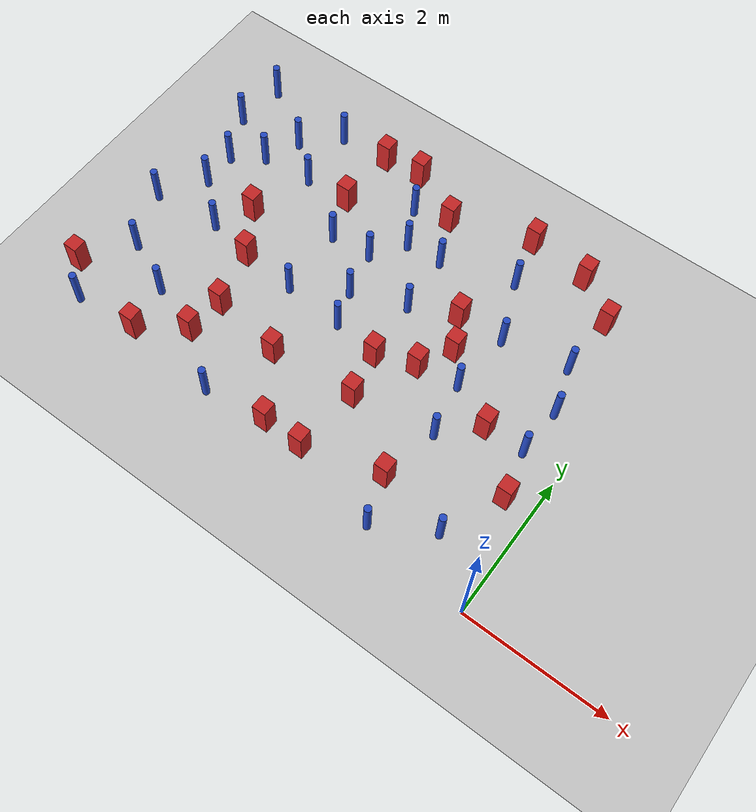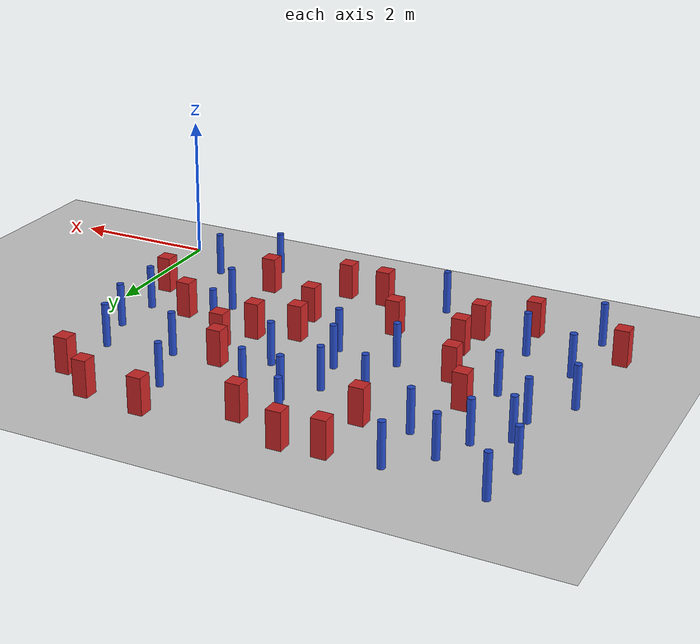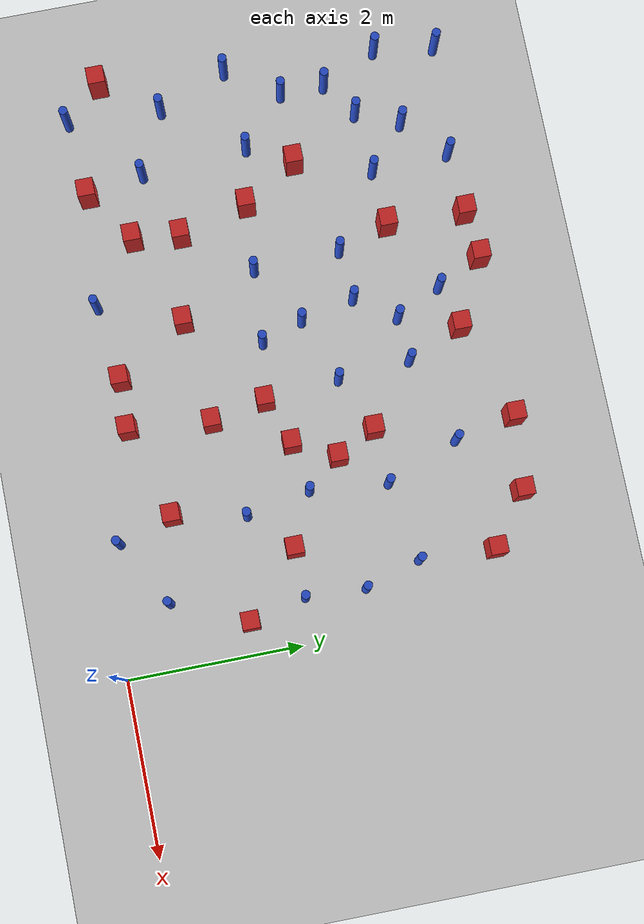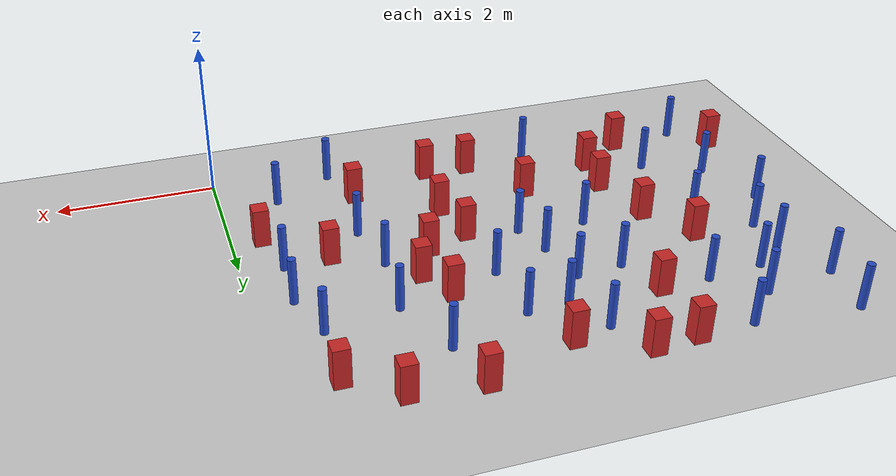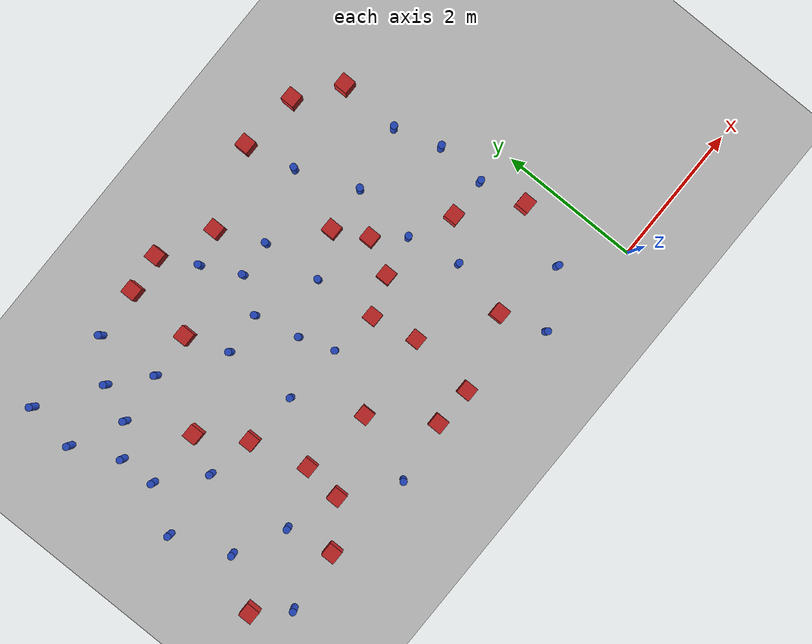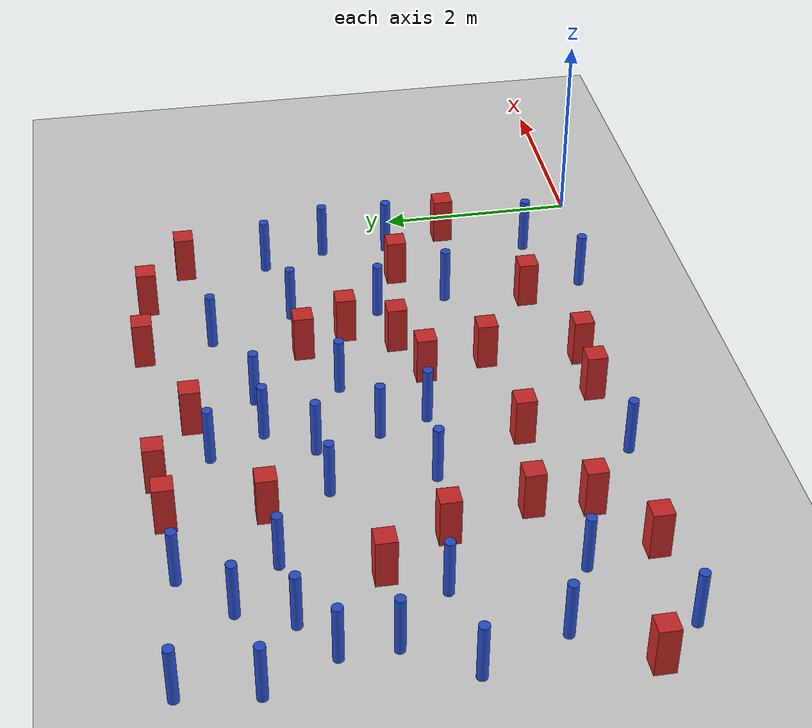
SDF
<sdf version="1.6">
 <world name="default">
  <model name="ground_plane">
   <static>1</static>
   <link name="link">
    <collision name="collision">
     <geometry><plane><normal>0 0 1</normal><size>100 100</size></plane></geometry>
     <surface><friction><ode><mu>100</mu><mu2>50</mu2></ode></friction></surface>
    </collision>
    <visual name="visual">
     <cast_shadows>0</cast_shadows>
     <geometry><plane><normal>0 0 1</normal><size>100 100</size></plane></geometry>
     <material>
      <ambient>1.0 1.0 1.0 1.0</ambient>
      <diffuse>0.8 0.8 0.8 1.0</diffuse>
      <specular>0.01 0.01 0.01 1.000000</specular>
     </material>
    </visual>
   </link>
  </model>
  <model name="square_post_obstacle0">
   <static>true</static>
   <pose>-4.89143161546 1.51569042266 8.22691968438e-08 7.2212513382e-06 -7.54495500217e-07 2.29674213826e-05</pose>
   <link name="link">
    <pose>0 0 0.25 0 -0 0</pose>
    <inertial>
     <mass>100</mass>
     <inertia>
      <ixx>0.166667</ixx>
      <ixy>0</ixy>
      <ixz>0</ixz>
      <iyy>0.166667</iyy>
      <iyz>0</iyz>
      <izz>0.166667</izz>
     </inertia>
    </inertial>
    <collision name="collision"><geometry><box><size>.2 .2 .5</size></box></geometry></collision>
    <visual name="visual">
     <geometry><box><size>.2 .2 .5</size></box></geometry>
     <material>
      <script><name>Gazebo/Red</name><uri>file://media/materials/scripts/gazebo.material</uri></script>
     </material>
    </visual>
   </link>
  </model>
  <model name="pole_obstacle5">
   <static>true</static>
   <pose>-5.27086612871 4.74190391233 2.88873142074e-08 -9.90536690842e-09 4.60219948965e-07 -1.20965994976e-07</pose>
   <link name="link">
    <pose>0 0 0.3 0 -0 0</pose>
    <inertial>
     <mass>1</mass>
     <inertia><ixx>0.145833</ixx><ixy>0</ixy><ixz>0</ixz><iyy>0.145833</iyy><iyz>0</iyz><izz>0.125</izz></inertia>
    </inertial>
    <collision name="collision">
     <geometry><cylinder><radius>0.05</radius><length>.6</length></cylinder></geometry>
    </collision>
    <visual name="visual">
     <geometry><cylinder><radius>0.05</radius><length>.6</length></cylinder></geometry>
     <material>
      <script><name>Gazebo/Blue</name><uri>file://media/materials/scripts/gazebo.material</uri></script>
     </material>
    </visual>
   </link>
  </model>
  <model name="pole_obstacle8">
   <static>true</static>
   <pose>-6.47609809093 0.466373372881 2.88873142074e-08 -9.90536689483e-09 4.60219948998e-07 -1.20965994956e-07</pose>
   <link name="link">
    <pose>0 0 0.3 0 -0 0</pose>
    <inertial>
     <mass>1</mass>
     <inertia><ixx>0.145833</ixx><ixy>0</ixy><ixz>0</ixz><iyy>0.145833</iyy><iyz>0</iyz><izz>0.125</izz></inertia>
    </inertial>
    <collision name="collision">
     <geometry><cylinder><radius>0.05</radius><length>.6</length></cylinder></geometry>
    </collision>
    <visual name="visual">
     <geometry><cylinder><radius>0.05</radius><length>.6</length></cylinder></geometry>
     <material>
      <script><name>Gazebo/Blue</name><uri>file://media/materials/scripts/gazebo.material</uri></script>
     </material>
    </visual>
   </link>
  </model>
  <model name="square_post_obstacle5">
   <static>true</static>
   <pose>-3.35329620936 0.536395780988 8.22691968438e-08 7.22125133819e-06 -7.54495500217e-07 2.29674213826e-05</pose>
   <link name="link">
    <pose>0 0 0.25 0 -0 0</pose>
    <inertial>
     <mass>100</mass>
     <inertia>
      <ixx>0.166667</ixx>
      <ixy>0</ixy>
      <ixz>0</ixz>
      <iyy>0.166667</iyy>
      <iyz>0</iyz>
      <izz>0.166667</izz>
     </inertia>
    </inertial>
    <collision name="collision"><geometry><box><size>.2 .2 .5</size></box></geometry></collision>
    <visual name="visual">
     <geometry><box><size>.2 .2 .5</size></box></geometry>
     <material>
      <script><name>Gazebo/Red</name><uri>file://media/materials/scripts/gazebo.material</uri></script>
     </material>
    </visual>
   </link>
  </model>
  <model name="pole_obstacle14">
   <static>true</static>
   <pose>-0.688879812202 3.46186205146 2.88873142074e-08 -9.90536689636e-09 4.60219948994e-07 -1.20965994958e-07</pose>
   <link name="link">
    <pose>0 0 0.3 0 -0 0</pose>
    <inertial>
     <mass>1</mass>
     <inertia><ixx>0.145833</ixx><ixy>0</ixy><ixz>0</ixz><iyy>0.145833</iyy><iyz>0</iyz><izz>0.125</izz></inertia>
    </inertial>
    <collision name="collision">
     <geometry><cylinder><radius>0.05</radius><length>.6</length></cylinder></geometry>
    </collision>
    <visual name="visual">
     <geometry><cylinder><radius>0.05</radius><length>.6</length></cylinder></geometry>
     <material>
      <script><name>Gazebo/Blue</name><uri>file://media/materials/scripts/gazebo.material</uri></script>
     </material>
    </visual>
   </link>
  </model>
  <model name="pole_obstacle18">
   <static>true</static>
   <pose>-6.36291029359 3.48522014257 2.88873142074e-08 -9.90536690245e-09 4.6021994898e-07 -1.20965994966e-07</pose>
   <link name="link">
    <pose>0 0 0.3 0 -0 0</pose>
    <inertial>
     <mass>1</mass>
     <inertia><ixx>0.145833</ixx><ixy>0</ixy><ixz>0</ixz><iyy>0.145833</iyy><iyz>0</iyz><izz>0.125</izz></inertia>
    </inertial>
    <collision name="collision">
     <geometry><cylinder><radius>0.05</radius><length>.6</length></cylinder></geometry>
    </collision>
    <visual name="visual">
     <geometry><cylinder><radius>0.05</radius><length>.6</length></cylinder></geometry>
     <material>
      <script><name>Gazebo/Blue</name><uri>file://media/materials/scripts/gazebo.material</uri></script>
     </material>
    </visual>
   </link>
  </model>
  <model name="square_post_obstacle16">
   <static>true</static>
   <pose>-2.09964077808 4.83931258459 8.22691968438e-08 7.22125133819e-06 -7.54495500217e-07 2.29674213826e-05</pose>
   <link name="link">
    <pose>0 0 0.25 0 -0 0</pose>
    <inertial>
     <mass>100</mass>
     <inertia>
      <ixx>0.166667</ixx>
      <ixy>0</ixy>
      <ixz>0</ixz>
      <iyy>0.166667</iyy>
      <iyz>0</iyz>
      <izz>0.166667</izz>
     </inertia>
    </inertial>
    <collision name="collision"><geometry><box><size>.2 .2 .5</size></box></geometry></collision>
    <visual name="visual">
     <geometry><box><size>.2 .2 .5</size></box></geometry>
     <material>
      <script><name>Gazebo/Red</name><uri>file://media/materials/scripts/gazebo.material</uri></script>
     </material>
    </visual>
   </link>
  </model>
  <model name="pole_obstacle20">
   <static>true</static>
   <pose>-3.47098428326 2.20703940675 2.88873142074e-08 -9.90536690232e-09 4.6021994898e-07 -1.20965994968e-07</pose>
   <link name="link">
    <pose>0 0 0.3 0 -0 0</pose>
    <inertial>
     <mass>1</mass>
     <inertia><ixx>0.145833</ixx><ixy>0</ixy><ixz>0</ixz><iyy>0.145833</iyy><iyz>0</iyz><izz>0.125</izz></inertia>
    </inertial>
    <collision name="collision">
     <geometry><cylinder><radius>0.05</radius><length>.6</length></cylinder></geometry>
    </collision>
    <visual name="visual">
     <geometry><cylinder><radius>0.05</radius><length>.6</length></cylinder></geometry>
     <material>
      <script><name>Gazebo/Blue</name><uri>file://media/materials/scripts/gazebo.material</uri></script>
     </material>
    </visual>
   </link>
  </model>
  <model name="pole_obstacle26">
   <static>true</static>
   <pose>-3.63461069473 2.69218367755 2.88873142074e-08 -9.90536689597e-09 4.60219948995e-07 -1.20965994957e-07</pose>
   <link name="link">
    <pose>0 0 0.3 0 -0 0</pose>
    <inertial>
     <mass>1</mass>
     <inertia><ixx>0.145833</ixx><ixy>0</ixy><ixz>0</ixz><iyy>0.145833</iyy><iyz>0</iyz><izz>0.125</izz></inertia>
    </inertial>
    <collision name="collision">
     <geometry><cylinder><radius>0.05</radius><length>.6</length></cylinder></geometry>
    </collision>
    <visual name="visual">
     <geometry><cylinder><radius>0.05</radius><length>.6</length></cylinder></geometry>
     <material>
      <script><name>Gazebo/Blue</name><uri>file://media/materials/scripts/gazebo.material</uri></script>
     </material>
    </visual>
   </link>
  </model>
  <model name="square_post_obstacle19">
   <static>true</static>
   <pose>-5.108507465 2.32276426685 8.22691968438e-08 7.2212513382e-06 -7.54495500217e-07 2.29674213826e-05</pose>
   <link name="link">
    <pose>0 0 0.25 0 -0 0</pose>
    <inertial>
     <mass>100</mass>
     <inertia>
      <ixx>0.166667</ixx>
      <ixy>0</ixy>
      <ixz>0</ixz>
      <iyy>0.166667</iyy>
      <iyz>0</iyz>
      <izz>0.166667</izz>
     </inertia>
    </inertial>
    <collision name="collision"><geometry><box><size>.2 .2 .5</size></box></geometry></collision>
    <visual name="visual">
     <geometry><box><size>.2 .2 .5</size></box></geometry>
     <material>
      <script><name>Gazebo/Red</name><uri>file://media/materials/scripts/gazebo.material</uri></script>
     </material>
    </visual>
   </link>
  </model>
  <model name="square_post_obstacle21">
   <static>true</static>
   <pose>-0.658608529936 4.32308007939 8.22691968438e-08 7.2212513382e-06 -7.54495500217e-07 2.29674213826e-05</pose>
   <link name="link">
    <pose>0 0 0.25 0 -0 0</pose>
    <inertial>
     <mass>100</mass>
     <inertia>
      <ixx>0.166667</ixx>
      <ixy>0</ixy>
      <ixz>0</ixz>
      <iyy>0.166667</iyy>
      <iyz>0</iyz>
      <izz>0.166667</izz>
     </inertia>
    </inertial>
    <collision name="collision"><geometry><box><size>.2 .2 .5</size></box></geometry></collision>
    <visual name="visual">
     <geometry><box><size>.2 .2 .5</size></box></geometry>
     <material>
      <script><name>Gazebo/Red</name><uri>file://media/materials/scripts/gazebo.material</uri></script>
     </material>
    </visual>
   </link>
  </model>
  <model name="square_post_obstacle22">
   <static>true</static>
   <pose>-3.99296304401 4.83571430791 8.22691968438e-08 7.2212513382e-06 -7.54495500217e-07 2.29674213826e-05</pose>
   <link name="link">
    <pose>0 0 0.25 0 -0 0</pose>
    <inertial>
     <mass>100</mass>
     <inertia>
      <ixx>0.166667</ixx>
      <ixy>0</ixy>
      <ixz>0</ixz>
      <iyy>0.166667</iyy>
      <iyz>0</iyz>
      <izz>0.166667</izz>
     </inertia>
    </inertial>
    <collision name="collision"><geometry><box><size>.2 .2 .5</size></box></geometry></collision>
    <visual name="visual">
     <geometry><box><size>.2 .2 .5</size></box></geometry>
     <material>
      <script><name>Gazebo/Red</name><uri>file://media/materials/scripts/gazebo.material</uri></script>
     </material>
    </visual>
   </link>
  </model>
  <model name="square_post_obstacle26">
   <static>true</static>
   <pose>-5.56888251649 0.548899556664 8.22691968438e-08 7.2212513382e-06 -7.54495500217e-07 2.29674213826e-05</pose>
   <link name="link">
    <pose>0 0 0.25 0 -0 0</pose>
    <inertial>
     <mass>100</mass>
     <inertia>
      <ixx>0.166667</ixx>
      <ixy>0</ixy>
      <ixz>0</ixz>
      <iyy>0.166667</iyy>
      <iyz>0</iyz>
      <izz>0.166667</izz>
     </inertia>
    </inertial>
    <collision name="collision"><geometry><box><size>.2 .2 .5</size></box></geometry></collision>
    <visual name="visual">
     <geometry><box><size>.2 .2 .5</size></box></geometry>
     <material>
      <script><name>Gazebo/Red</name><uri>file://media/materials/scripts/gazebo.material</uri></script>
     </material>
    </visual>
   </link>
  </model>
  <model name="pole_obstacle40">
   <static>true</static>
   <pose>-4.32751106925 2.26925690166 2.88873142074e-08 -9.90536690245e-09 4.6021994898e-07 -1.20965994966e-07</pose>
   <link name="link">
    <pose>0 0 0.3 0 -0 0</pose>
    <inertial>
     <mass>1</mass>
     <inertia><ixx>0.145833</ixx><ixy>0</ixy><ixz>0</ixz><iyy>0.145833</iyy><iyz>0</iyz><izz>0.125</izz></inertia>
    </inertial>
    <collision name="collision">
     <geometry><cylinder><radius>0.05</radius><length>.6</length></cylinder></geometry>
    </collision>
    <visual name="visual">
     <geometry><cylinder><radius>0.05</radius><length>.6</length></cylinder></geometry>
     <material>
      <script><name>Gazebo/Blue</name><uri>file://media/materials/scripts/gazebo.material</uri></script>
     </material>
    </visual>
   </link>
  </model>
  <model name="square_post_obstacle34">
   <static>true</static>
   <pose>-5.50843700741 2.9577754186 8.22691968438e-08 7.2212513382e-06 -7.54495500217e-07 2.29674213826e-05</pose>
   <link name="link">
    <pose>0 0 0.25 0 -0 0</pose>
    <inertial>
     <mass>100</mass>
     <inertia>
      <ixx>0.166667</ixx>
      <ixy>0</ixy>
      <ixz>0</ixz>
      <iyy>0.166667</iyy>
      <iyz>0</iyz>
      <izz>0.166667</izz>
     </inertia>
    </inertial>
    <collision name="collision"><geometry><box><size>.2 .2 .5</size></box></geometry></collision>
    <visual name="visual">
     <geometry><box><size>.2 .2 .5</size></box></geometry>
     <material>
      <script><name>Gazebo/Red</name><uri>file://media/materials/scripts/gazebo.material</uri></script>
     </material>
    </visual>
   </link>
  </model>
  <model name="pole_obstacle45">
   <static>true</static>
   <pose>-6.57851565119 4.84604466267 2.88873142074e-08 -9.90536690842e-09 4.60219948965e-07 -1.20965994976e-07</pose>
   <link name="link">
    <pose>0 0 0.3 0 -0 0</pose>
    <inertial>
     <mass>1</mass>
     <inertia><ixx>0.145833</ixx><ixy>0</ixy><ixz>0</ixz><iyy>0.145833</iyy><iyz>0</iyz><izz>0.125</izz></inertia>
    </inertial>
    <collision name="collision">
     <geometry><cylinder><radius>0.05</radius><length>.6</length></cylinder></geometry>
    </collision>
    <visual name="visual">
     <geometry><cylinder><radius>0.05</radius><length>.6</length></cylinder></geometry>
     <material>
      <script><name>Gazebo/Blue</name><uri>file://media/materials/scripts/gazebo.material</uri></script>
     </material>
    </visual>
   </link>
  </model>
  <model name="square_post_obstacle40">
   <static>true</static>
   <pose>-6.87013311288 0.896118733905 8.22691968438e-08 7.2212513382e-06 -7.54495500217e-07 2.29674213826e-05</pose>
   <link name="link">
    <pose>0 0 0.25 0 -0 0</pose>
    <inertial>
     <mass>100</mass>
     <inertia>
      <ixx>0.166667</ixx>
      <ixy>0</ixy>
      <ixz>0</ixz>
      <iyy>0.166667</iyy>
      <iyz>0</iyz>
      <izz>0.166667</izz>
     </inertia>
    </inertial>
    <collision name="collision"><geometry><box><size>.2 .2 .5</size></box></geometry></collision>
    <visual name="visual">
     <geometry><box><size>.2 .2 .5</size></box></geometry>
     <material>
      <script><name>Gazebo/Red</name><uri>file://media/materials/scripts/gazebo.material</uri></script>
     </material>
    </visual>
   </link>
  </model>
  <model name="pole_obstacle60">
   <static>true</static>
   <pose>-1.94271214867 4.14186233684 2.88873142074e-08 -9.90536689852e-09 4.60219948989e-07 -1.2096599496e-07</pose>
   <link name="link">
    <pose>0 0 0.3 0 -0 0</pose>
    <inertial>
     <mass>1</mass>
     <inertia><ixx>0.145833</ixx><ixy>0</ixy><ixz>0</ixz><iyy>0.145833</iyy><iyz>0</iyz><izz>0.125</izz></inertia>
    </inertial>
    <collision name="collision">
     <geometry><cylinder><radius>0.05</radius><length>.6</length></cylinder></geometry>
    </collision>
    <visual name="visual">
     <geometry><cylinder><radius>0.05</radius><length>.6</length></cylinder></geometry>
     <material>
      <script><name>Gazebo/Blue</name><uri>file://media/materials/scripts/gazebo.material</uri></script>
     </material>
    </visual>
   </link>
  </model>
  <model name="pole_obstacle61">
   <static>true</static>
   <pose>-6.41899074953 1.55711391883 2.88873142074e-08 -9.90536689445e-09 4.60219948999e-07 -1.20965994956e-07</pose>
   <link name="link">
    <pose>0 0 0.3 0 -0 0</pose>
    <inertial>
     <mass>1</mass>
     <inertia><ixx>0.145833</ixx><ixy>0</ixy><ixz>0</ixz><iyy>0.145833</iyy><iyz>0</iyz><izz>0.125</izz></inertia>
    </inertial>
    <collision name="collision">
     <geometry><cylinder><radius>0.05</radius><length>.6</length></cylinder></geometry>
    </collision>
    <visual name="visual">
     <geometry><cylinder><radius>0.05</radius><length>.6</length></cylinder></geometry>
     <material>
      <script><name>Gazebo/Blue</name><uri>file://media/materials/scripts/gazebo.material</uri></script>
     </material>
    </visual>
   </link>
  </model>
  <model name="square_post_obstacle59">
   <static>true</static>
   <pose>-4.54461665638 4.78231792849 8.22691968438e-08 7.2212513382e-06 -7.54495500217e-07 2.29674213826e-05</pose>
   <link name="link">
    <pose>0 0 0.25 0 -0 0</pose>
    <inertial>
     <mass>100</mass>
     <inertia>
      <ixx>0.166667</ixx>
      <ixy>0</ixy>
      <ixz>0</ixz>
      <iyy>0.166667</iyy>
      <iyz>0</iyz>
      <izz>0.166667</izz>
     </inertia>
    </inertial>
    <collision name="collision"><geometry><box><size>.2 .2 .5</size></box></geometry></collision>
    <visual name="visual">
     <geometry><box><size>.2 .2 .5</size></box></geometry>
     <material>
      <script><name>Gazebo/Red</name><uri>file://media/materials/scripts/gazebo.material</uri></script>
     </material>
    </visual>
   </link>
  </model>
  <model name="square_post_obstacle60">
   <static>true</static>
   <pose>-2.80633311508 2.10468690188 8.22691968438e-08 7.2212513382e-06 -7.54495500217e-07 2.29674213826e-05</pose>
   <link name="link">
    <pose>0 0 0.25 0 -0 0</pose>
    <inertial>
     <mass>100</mass>
     <inertia>
      <ixx>0.166667</ixx>
      <ixy>0</ixy>
      <ixz>0</ixz>
      <iyy>0.166667</iyy>
      <iyz>0</iyz>
      <izz>0.166667</izz>
     </inertia>
    </inertial>
    <collision name="collision"><geometry><box><size>.2 .2 .5</size></box></geometry></collision>
    <visual name="visual">
     <geometry><box><size>.2 .2 .5</size></box></geometry>
     <material>
      <script><name>Gazebo/Red</name><uri>file://media/materials/scripts/gazebo.material</uri></script>
     </material>
    </visual>
   </link>
  </model>
  <model name="pole_obstacle77">
   <static>true</static>
   <pose>-4.36401900023 3.27578762418 2.88873142074e-08 -9.90536690245e-09 4.6021994898e-07 -1.20965994966e-07</pose>
   <link name="link">
    <pose>0 0 0.3 0 -0 0</pose>
    <inertial>
     <mass>1</mass>
     <inertia><ixx>0.145833</ixx><ixy>0</ixy><ixz>0</ixz><iyy>0.145833</iyy><iyz>0</iyz><izz>0.125</izz></inertia>
    </inertial>
    <collision name="collision">
     <geometry><cylinder><radius>0.05</radius><length>.6</length></cylinder></geometry>
    </collision>
    <visual name="visual">
     <geometry><cylinder><radius>0.05</radius><length>.6</length></cylinder></geometry>
     <material>
      <script><name>Gazebo/Blue</name><uri>file://media/materials/scripts/gazebo.material</uri></script>
     </material>
    </visual>
   </link>
  </model>
  <model name="square_post_obstacle70">
   <static>true</static>
   <pose>-2.25129498444 3.25023731401 8.22691968438e-08 7.2212513382e-06 -7.54495500217e-07 2.29674213826e-05</pose>
   <link name="link">
    <pose>0 0 0.25 0 -0 0</pose>
    <inertial>
     <mass>100</mass>
     <inertia>
      <ixx>0.166667</ixx>
      <ixy>0</ixy>
      <ixz>0</ixz>
      <iyy>0.166667</iyy>
      <iyz>0</iyz>
      <izz>0.166667</izz>
     </inertia>
    </inertial>
    <collision name="collision"><geometry><box><size>.2 .2 .5</size></box></geometry></collision>
    <visual name="visual">
     <geometry><box><size>.2 .2 .5</size></box></geometry>
     <material>
      <script><name>Gazebo/Red</name><uri>file://media/materials/scripts/gazebo.material</uri></script>
     </material>
    </visual>
   </link>
  </model>
  <model name="square_post_obstacle77">
   <static>true</static>
   <pose>-2.77978038958 0.516277642619 8.22691968438e-08 7.2212513382e-06 -7.54495500217e-07 2.29674213826e-05</pose>
   <link name="link">
    <pose>0 0 0.25 0 -0 0</pose>
    <inertial>
     <mass>100</mass>
     <inertia>
      <ixx>0.166667</ixx>
      <ixy>0</ixy>
      <ixz>0</ixz>
      <iyy>0.166667</iyy>
      <iyz>0</iyz>
      <izz>0.166667</izz>
     </inertia>
    </inertial>
    <collision name="collision"><geometry><box><size>.2 .2 .5</size></box></geometry></collision>
    <visual name="visual">
     <geometry><box><size>.2 .2 .5</size></box></geometry>
     <material>
      <script><name>Gazebo/Red</name><uri>file://media/materials/scripts/gazebo.material</uri></script>
     </material>
    </visual>
   </link>
  </model>
  <model name="pole_obstacle89">
   <static>true</static>
   <pose>-0.743374856303 0.626334241716 2.88873142074e-08 -9.90536689967e-09 4.60219948986e-07 -1.20965994963e-07</pose>
   <link name="link">
    <pose>0 0 0.3 0 -0 0</pose>
    <inertial>
     <mass>1</mass>
     <inertia><ixx>0.145833</ixx><ixy>0</ixy><ixz>0</ixz><iyy>0.145833</iyy><iyz>0</iyz><izz>0.125</izz></inertia>
    </inertial>
    <collision name="collision">
     <geometry><cylinder><radius>0.05</radius><length>.6</length></cylinder></geometry>
    </collision>
    <visual name="visual">
     <geometry><cylinder><radius>0.05</radius><length>.6</length></cylinder></geometry>
     <material>
      <script><name>Gazebo/Blue</name><uri>file://media/materials/scripts/gazebo.material</uri></script>
     </material>
    </visual>
   </link>
  </model>
  <model name="pole_obstacle90">
   <static>true</static>
   <pose>-1.50738151445 0.192560686878 2.88873142074e-08 -9.90536689986e-09 4.60219948986e-07 -1.20965994962e-07</pose>
   <link name="link">
    <pose>0 0 0.3 0 -0 0</pose>
    <inertial>
     <mass>1</mass>
     <inertia><ixx>0.145833</ixx><ixy>0</ixy><ixz>0</ixz><iyy>0.145833</iyy><iyz>0</iyz><izz>0.125</izz></inertia>
    </inertial>
    <collision name="collision">
     <geometry><cylinder><radius>0.05</radius><length>.6</length></cylinder></geometry>
    </collision>
    <visual name="visual">
     <geometry><cylinder><radius>0.05</radius><length>.6</length></cylinder></geometry>
     <material>
      <script><name>Gazebo/Blue</name><uri>file://media/materials/scripts/gazebo.material</uri></script>
     </material>
    </visual>
   </link>
  </model>
  <model name="square_post_obstacle84">
   <static>true</static>
   <pose>-3.88394612844 1.36169598148 8.22691968438e-08 7.22125133819e-06 -7.54495500217e-07 2.29674213826e-05</pose>
   <link name="link">
    <pose>0 0 0.25 0 -0 0</pose>
    <inertial>
     <mass>100</mass>
     <inertia>
      <ixx>0.166667</ixx>
      <ixy>0</ixy>
      <ixz>0</ixz>
      <iyy>0.166667</iyy>
      <iyz>0</iyz>
      <izz>0.166667</izz>
     </inertia>
    </inertial>
    <collision name="collision"><geometry><box><size>.2 .2 .5</size></box></geometry></collision>
    <visual name="visual">
     <geometry><box><size>.2 .2 .5</size></box></geometry>
     <material>
      <script><name>Gazebo/Red</name><uri>file://media/materials/scripts/gazebo.material</uri></script>
     </material>
    </visual>
   </link>
  </model>
  <model name="pole_obstacle92">
   <static>true</static>
   <pose>-1.60400978231 3.29651822979 2.88873142074e-08 -9.90536689791e-09 4.6021994899e-07 -1.20965994959e-07</pose>
   <link name="link">
    <pose>0 0 0.3 0 -0 0</pose>
    <inertial>
     <mass>1</mass>
     <inertia><ixx>0.145833</ixx><ixy>0</ixy><ixz>0</ixz><iyy>0.145833</iyy><iyz>0</iyz><izz>0.125</izz></inertia>
    </inertial>
    <collision name="collision">
     <geometry><cylinder><radius>0.05</radius><length>.6</length></cylinder></geometry>
    </collision>
    <visual name="visual">
     <geometry><cylinder><radius>0.05</radius><length>.6</length></cylinder></geometry>
     <material>
      <script><name>Gazebo/Blue</name><uri>file://media/materials/scripts/gazebo.material</uri></script>
     </material>
    </visual>
   </link>
  </model>
  <model name="pole_obstacle95">
   <static>true</static>
   <pose>-6.66959274094 4.14174133365 2.88873142074e-08 -9.90536690842e-09 4.60219948965e-07 -1.20965994976e-07</pose>
   <link name="link">
    <pose>0 0 0.3 0 -0 0</pose>
    <inertial>
     <mass>1</mass>
     <inertia><ixx>0.145833</ixx><ixy>0</ixy><ixz>0</ixz><iyy>0.145833</iyy><iyz>0</iyz><izz>0.125</izz></inertia>
    </inertial>
    <collision name="collision">
     <geometry><cylinder><radius>0.05</radius><length>.6</length></cylinder></geometry>
    </collision>
    <visual name="visual">
     <geometry><cylinder><radius>0.05</radius><length>.6</length></cylinder></geometry>
     <material>
      <script><name>Gazebo/Blue</name><uri>file://media/materials/scripts/gazebo.material</uri></script>
     </material>
    </visual>
   </link>
  </model>
  <model name="pole_obstacle97">
   <static>true</static>
   <pose>-1.5458738384 1.65960232332 2.88873142074e-08 -9.90536689672e-09 4.60219948993e-07 -1.20965994959e-07</pose>
   <link name="link">
    <pose>0 0 0.3 0 -0 0</pose>
    <inertial>
     <mass>1</mass>
     <inertia><ixx>0.145833</ixx><ixy>0</ixy><ixz>0</ixz><iyy>0.145833</iyy><iyz>0</iyz><izz>0.125</izz></inertia>
    </inertial>
    <collision name="collision">
     <geometry><cylinder><radius>0.05</radius><length>.6</length></cylinder></geometry>
    </collision>
    <visual name="visual">
     <geometry><cylinder><radius>0.05</radius><length>.6</length></cylinder></geometry>
     <material>
      <script><name>Gazebo/Blue</name><uri>file://media/materials/scripts/gazebo.material</uri></script>
     </material>
    </visual>
   </link>
  </model>
  <model name="square_post_obstacle91">
   <static>true</static>
   <pose>-2.0173065335 2.79102392457 8.22691968438e-08 7.2212513382e-06 -7.54495500217e-07 2.29674213826e-05</pose>
   <link name="link">
    <pose>0 0 0.25 0 -0 0</pose>
    <inertial>
     <mass>100</mass>
     <inertia>
      <ixx>0.166667</ixx>
      <ixy>0</ixy>
      <ixz>0</ixz>
      <iyy>0.166667</iyy>
      <iyz>0</iyz>
      <izz>0.166667</izz>
     </inertia>
    </inertial>
    <collision name="collision"><geometry><box><size>.2 .2 .5</size></box></geometry></collision>
    <visual name="visual">
     <geometry><box><size>.2 .2 .5</size></box></geometry>
     <material>
      <script><name>Gazebo/Red</name><uri>file://media/materials/scripts/gazebo.material</uri></script>
     </material>
    </visual>
   </link>
  </model>
  <model name="pole_obstacle102">
   <static>true</static>
   <pose>-5.77723811398 2.45026634693 2.88873142074e-08 -9.90536690245e-09 4.6021994898e-07 -1.20965994966e-07</pose>
   <link name="link">
    <pose>0 0 0.3 0 -0 0</pose>
    <inertial>
     <mass>1</mass>
     <inertia><ixx>0.145833</ixx><ixy>0</ixy><ixz>0</ixz><iyy>0.145833</iyy><iyz>0</iyz><izz>0.125</izz></inertia>
    </inertial>
    <collision name="collision">
     <geometry><cylinder><radius>0.05</radius><length>.6</length></cylinder></geometry>
    </collision>
    <visual name="visual">
     <geometry><cylinder><radius>0.05</radius><length>.6</length></cylinder></geometry>
     <material>
      <script><name>Gazebo/Blue</name><uri>file://media/materials/scripts/gazebo.material</uri></script>
     </material>
    </visual>
   </link>
  </model>
  <model name="square_post_obstacle101">
   <static>true</static>
   <pose>-1.24137384011 4.75209440688 8.22691968438e-08 7.2212513382e-06 -7.54495500217e-07 2.29674213826e-05</pose>
   <link name="link">
    <pose>0 0 0.25 0 -0 0</pose>
    <inertial>
     <mass>100</mass>
     <inertia>
      <ixx>0.166667</ixx>
      <ixy>0</ixy>
      <ixz>0</ixz>
      <iyy>0.166667</iyy>
      <iyz>0</iyz>
      <izz>0.166667</izz>
     </inertia>
    </inertial>
    <collision name="collision"><geometry><box><size>.2 .2 .5</size></box></geometry></collision>
    <visual name="visual">
     <geometry><box><size>.2 .2 .5</size></box></geometry>
     <material>
      <script><name>Gazebo/Red</name><uri>file://media/materials/scripts/gazebo.material</uri></script>
     </material>
    </visual>
   </link>
  </model>
  <model name="pole_obstacle112">
   <static>true</static>
   <pose>-3.77614546877 3.32087222282 2.88873142074e-08 -9.90536689597e-09 4.60219948995e-07 -1.20965994957e-07</pose>
   <link name="link">
    <pose>0 0 0.3 0 -0 0</pose>
    <inertial>
     <mass>1</mass>
     <inertia><ixx>0.145833</ixx><ixy>0</ixy><ixz>0</ixz><iyy>0.145833</iyy><iyz>0</iyz><izz>0.125</izz></inertia>
    </inertial>
    <collision name="collision">
     <geometry><cylinder><radius>0.05</radius><length>.6</length></cylinder></geometry>
    </collision>
    <visual name="visual">
     <geometry><cylinder><radius>0.05</radius><length>.6</length></cylinder></geometry>
     <material>
      <script><name>Gazebo/Blue</name><uri>file://media/materials/scripts/gazebo.material</uri></script>
     </material>
    </visual>
   </link>
  </model>
  <model name="pole_obstacle115">
   <static>true</static>
   <pose>-2.94532323443 3.81224248161 2.88873142074e-08 -9.90536690232e-09 4.6021994898e-07 -1.20965994968e-07</pose>
   <link name="link">
    <pose>0 0 0.3 0 -0 0</pose>
    <inertial>
     <mass>1</mass>
     <inertia><ixx>0.145833</ixx><ixy>0</ixy><ixz>0</ixz><iyy>0.145833</iyy><iyz>0</iyz><izz>0.125</izz></inertia>
    </inertial>
    <collision name="collision">
     <geometry><cylinder><radius>0.05</radius><length>.6</length></cylinder></geometry>
    </collision>
    <visual name="visual">
     <geometry><cylinder><radius>0.05</radius><length>.6</length></cylinder></geometry>
     <material>
      <script><name>Gazebo/Blue</name><uri>file://media/materials/scripts/gazebo.material</uri></script>
     </material>
    </visual>
   </link>
  </model>
  <model name="square_post_obstacle112">
   <static>true</static>
   <pose>-1.08876507777 2.11141107669 8.22691968438e-08 7.22125133819e-06 -7.54495500217e-07 2.29674213826e-05</pose>
   <link name="link">
    <pose>0 0 0.25 0 -0 0</pose>
    <inertial>
     <mass>100</mass>
     <inertia>
      <ixx>0.166667</ixx>
      <ixy>0</ixy>
      <ixz>0</ixz>
      <iyy>0.166667</iyy>
      <iyz>0</iyz>
      <izz>0.166667</izz>
     </inertia>
    </inertial>
    <collision name="collision"><geometry><box><size>.2 .2 .5</size></box></geometry></collision>
    <visual name="visual">
     <geometry><box><size>.2 .2 .5</size></box></geometry>
     <material>
      <script><name>Gazebo/Red</name><uri>file://media/materials/scripts/gazebo.material</uri></script>
     </material>
    </visual>
   </link>
  </model>
  <model name="pole_obstacle120">
   <static>true</static>
   <pose>-5.68932752227 1.20932833465 2.88873142074e-08 -9.90536689445e-09 4.60219948999e-07 -1.20965994956e-07</pose>
   <link name="link">
    <pose>0 0 0.3 0 -0 0</pose>
    <inertial>
     <mass>1</mass>
     <inertia><ixx>0.145833</ixx><ixy>0</ixy><ixz>0</ixz><iyy>0.145833</iyy><iyz>0</iyz><izz>0.125</izz></inertia>
    </inertial>
    <collision name="collision">
     <geometry><cylinder><radius>0.05</radius><length>.6</length></cylinder></geometry>
    </collision>
    <visual name="visual">
     <geometry><cylinder><radius>0.05</radius><length>.6</length></cylinder></geometry>
     <material>
      <script><name>Gazebo/Blue</name><uri>file://media/materials/scripts/gazebo.material</uri></script>
     </material>
    </visual>
   </link>
  </model>
  <model name="pole_obstacle122">
   <static>true</static>
   <pose>-5.22416047214 3.84092794425 2.88873142074e-08 -9.90536690245e-09 4.6021994898e-07 -1.20965994966e-07</pose>
   <link name="link">
    <pose>0 0 0.3 0 -0 0</pose>
    <inertial>
     <mass>1</mass>
     <inertia><ixx>0.145833</ixx><ixy>0</ixy><ixz>0</ixz><iyy>0.145833</iyy><iyz>0</iyz><izz>0.125</izz></inertia>
    </inertial>
    <collision name="collision">
     <geometry><cylinder><radius>0.05</radius><length>.6</length></cylinder></geometry>
    </collision>
    <visual name="visual">
     <geometry><cylinder><radius>0.05</radius><length>.6</length></cylinder></geometry>
     <material>
      <script><name>Gazebo/Blue</name><uri>file://media/materials/scripts/gazebo.material</uri></script>
     </material>
    </visual>
   </link>
  </model>
  <model name="pole_obstacle126">
   <static>true</static>
   <pose>-2.88443682056 2.9728654794 2.88873142074e-08 -9.90536690232e-09 4.6021994898e-07 -1.20965994968e-07</pose>
   <link name="link">
    <pose>0 0 0.3 0 -0 0</pose>
    <inertial>
     <mass>1</mass>
     <inertia><ixx>0.145833</ixx><ixy>0</ixy><ixz>0</ixz><iyy>0.145833</iyy><iyz>0</iyz><izz>0.125</izz></inertia>
    </inertial>
    <collision name="collision">
     <geometry><cylinder><radius>0.05</radius><length>.6</length></cylinder></geometry>
    </collision>
    <visual name="visual">
     <geometry><cylinder><radius>0.05</radius><length>.6</length></cylinder></geometry>
     <material>
      <script><name>Gazebo/Blue</name><uri>file://media/materials/scripts/gazebo.material</uri></script>
     </material>
    </visual>
   </link>
  </model>
  <model name="pole_obstacle135">
   <static>true</static>
   <pose>-3.72532185768 4.31328149309 2.88873142074e-08 -9.90536692062e-09 4.60219948937e-07 -1.20965994985e-07</pose>
   <link name="link">
    <pose>0 0 0.3 0 -0 0</pose>
    <inertial>
     <mass>1</mass>
     <inertia><ixx>0.145833</ixx><ixy>0</ixy><ixz>0</ixz><iyy>0.145833</iyy><iyz>0</iyz><izz>0.125</izz></inertia>
    </inertial>
    <collision name="collision">
     <geometry><cylinder><radius>0.05</radius><length>.6</length></cylinder></geometry>
    </collision>
    <visual name="visual">
     <geometry><cylinder><radius>0.05</radius><length>.6</length></cylinder></geometry>
     <material>
      <script><name>Gazebo/Blue</name><uri>file://media/materials/scripts/gazebo.material</uri></script>
     </material>
    </visual>
   </link>
  </model>
  <model name="pole_obstacle138">
   <static>true</static>
   <pose>-6.74842035982 2.36709783804 2.88873142074e-08 -9.90536690245e-09 4.6021994898e-07 -1.20965994966e-07</pose>
   <link name="link">
    <pose>0 0 0.3 0 -0 0</pose>
    <inertial>
     <mass>1</mass>
     <inertia><ixx>0.145833</ixx><ixy>0</ixy><ixz>0</ixz><iyy>0.145833</iyy><iyz>0</iyz><izz>0.125</izz></inertia>
    </inertial>
    <collision name="collision">
     <geometry><cylinder><radius>0.05</radius><length>.6</length></cylinder></geometry>
    </collision>
    <visual name="visual">
     <geometry><cylinder><radius>0.05</radius><length>.6</length></cylinder></geometry>
     <material>
      <script><name>Gazebo/Blue</name><uri>file://media/materials/scripts/gazebo.material</uri></script>
     </material>
    </visual>
   </link>
  </model>
  <model name="pole_obstacle141">
   <static>true</static>
   <pose>-0.491277566581 2.81621606934 2.88873142074e-08 -9.90536689335e-09 4.60219949001e-07 -1.20965994953e-07</pose>
   <link name="link">
    <pose>0 0 0.3 0 -0 0</pose>
    <inertial>
     <mass>1</mass>
     <inertia><ixx>0.145833</ixx><ixy>0</ixy><ixz>0</ixz><iyy>0.145833</iyy><iyz>0</iyz><izz>0.125</izz></inertia>
    </inertial>
    <collision name="collision">
     <geometry><cylinder><radius>0.05</radius><length>.6</length></cylinder></geometry>
    </collision>
    <visual name="visual">
     <geometry><cylinder><radius>0.05</radius><length>.6</length></cylinder></geometry>
     <material>
      <script><name>Gazebo/Blue</name><uri>file://media/materials/scripts/gazebo.material</uri></script>
     </material>
    </visual>
   </link>
  </model>
  <model name="pole_obstacle149">
   <static>true</static>
   <pose>-5.73688618036 4.27785568413 2.88873142074e-08 -9.90536690842e-09 4.60219948965e-07 -1.20965994976e-07</pose>
   <link name="link">
    <pose>0 0 0.3 0 -0 0</pose>
    <inertial>
     <mass>1</mass>
     <inertia><ixx>0.145833</ixx><ixy>0</ixy><ixz>0</ixz><iyy>0.145833</iyy><iyz>0</iyz><izz>0.125</izz></inertia>
    </inertial>
    <collision name="collision">
     <geometry><cylinder><radius>0.05</radius><length>.6</length></cylinder></geometry>
    </collision>
    <visual name="visual">
     <geometry><cylinder><radius>0.05</radius><length>.6</length></cylinder></geometry>
     <material>
      <script><name>Gazebo/Blue</name><uri>file://media/materials/scripts/gazebo.material</uri></script>
     </material>
    </visual>
   </link>
  </model>
  <model name="pole_obstacle157">
   <static>true</static>
   <pose>-4.23472770485 0.417587940115 2.88873142074e-08 -9.90536689981e-09 4.60219948986e-07 -1.20965994962e-07</pose>
   <link name="link">
    <pose>0 0 0.3 0 -0 0</pose>
    <inertial>
     <mass>1</mass>
     <inertia><ixx>0.145833</ixx><ixy>0</ixy><ixz>0</ixz><iyy>0.145833</iyy><iyz>0</iyz><izz>0.125</izz></inertia>
    </inertial>
    <collision name="collision">
     <geometry><cylinder><radius>0.05</radius><length>.6</length></cylinder></geometry>
    </collision>
    <visual name="visual">
     <geometry><cylinder><radius>0.05</radius><length>.6</length></cylinder></geometry>
     <material>
      <script><name>Gazebo/Blue</name><uri>file://media/materials/scripts/gazebo.material</uri></script>
     </material>
    </visual>
   </link>
  </model>
  <model name="square_post_obstacle154">
   <static>true</static>
   <pose>-4.57222426351 3.87315489291 8.22691968438e-08 7.2212513382e-06 -7.54495500217e-07 2.29674213826e-05</pose>
   <link name="link">
    <pose>0 0 0.25 0 -0 0</pose>
    <inertial>
     <mass>100</mass>
     <inertia>
      <ixx>0.166667</ixx>
      <ixy>0</ixy>
      <ixz>0</ixz>
      <iyy>0.166667</iyy>
      <iyz>0</iyz>
      <izz>0.166667</izz>
     </inertia>
    </inertial>
    <collision name="collision"><geometry><box><size>.2 .2 .5</size></box></geometry></collision>
    <visual name="visual">
     <geometry><box><size>.2 .2 .5</size></box></geometry>
     <material>
      <script><name>Gazebo/Red</name><uri>file://media/materials/scripts/gazebo.material</uri></script>
     </material>
    </visual>
   </link>
  </model>
  <model name="pole_obstacle164">
   <static>true</static>
   <pose>-6.35059455356 2.97191506705 2.88873142074e-08 -9.90536690245e-09 4.6021994898e-07 -1.20965994966e-07</pose>
   <link name="link">
    <pose>0 0 0.3 0 -0 0</pose>
    <inertial>
     <mass>1</mass>
     <inertia><ixx>0.145833</ixx><ixy>0</ixy><ixz>0</ixz><iyy>0.145833</iyy><iyz>0</iyz><izz>0.125</izz></inertia>
    </inertial>
    <collision name="collision">
     <geometry><cylinder><radius>0.05</radius><length>.6</length></cylinder></geometry>
    </collision>
    <visual name="visual">
     <geometry><cylinder><radius>0.05</radius><length>.6</length></cylinder></geometry>
     <material>
      <script><name>Gazebo/Blue</name><uri>file://media/materials/scripts/gazebo.material</uri></script>
     </material>
    </visual>
   </link>
  </model>
  <model name="square_post_obstacle160">
   <static>true</static>
   <pose>-2.67778931397 1.46758711779 8.22691968438e-08 7.2212513382e-06 -7.54495500217e-07 2.29674213826e-05</pose>
   <link name="link">
    <pose>0 0 0.25 0 -0 0</pose>
    <inertial>
     <mass>100</mass>
     <inertia>
      <ixx>0.166667</ixx>
      <ixy>0</ixy>
      <ixz>0</ixz>
      <iyy>0.166667</iyy>
      <iyz>0</iyz>
      <izz>0.166667</izz>
     </inertia>
    </inertial>
    <collision name="collision"><geometry><box><size>.2 .2 .5</size></box></geometry></collision>
    <visual name="visual">
     <geometry><box><size>.2 .2 .5</size></box></geometry>
     <material>
      <script><name>Gazebo/Red</name><uri>file://media/materials/scripts/gazebo.material</uri></script>
     </material>
    </visual>
   </link>
  </model>
  <model name="pole_obstacle166">
   <static>true</static>
   <pose>-5.94886006905 3.77522836369 2.88873142074e-08 -9.90536690245e-09 4.6021994898e-07 -1.20965994966e-07</pose>
   <link name="link">
    <pose>0 0 0.3 0 -0 0</pose>
    <inertial>
     <mass>1</mass>
     <inertia><ixx>0.145833</ixx><ixy>0</ixy><ixz>0</ixz><iyy>0.145833</iyy><iyz>0</iyz><izz>0.125</izz></inertia>
    </inertial>
    <collision name="collision">
     <geometry><cylinder><radius>0.05</radius><length>.6</length></cylinder></geometry>
    </collision>
    <visual name="visual">
     <geometry><cylinder><radius>0.05</radius><length>.6</length></cylinder></geometry>
     <material>
      <script><name>Gazebo/Blue</name><uri>file://media/materials/scripts/gazebo.material</uri></script>
     </material>
    </visual>
   </link>
  </model>
  <model name="pole_obstacle178">
   <static>true</static>
   <pose>-0.521264611682 2.12549237194 2.88873142074e-08 -9.90536689656e-09 4.60219948993e-07 -1.20965994958e-07</pose>
   <link name="link">
    <pose>0 0 0.3 0 -0 0</pose>
    <inertial>
     <mass>1</mass>
     <inertia><ixx>0.145833</ixx><ixy>0</ixy><ixz>0</ixz><iyy>0.145833</iyy><iyz>0</iyz><izz>0.125</izz></inertia>
    </inertial>
    <collision name="collision">
     <geometry><cylinder><radius>0.05</radius><length>.6</length></cylinder></geometry>
    </collision>
    <visual name="visual">
     <geometry><cylinder><radius>0.05</radius><length>.6</length></cylinder></geometry>
     <material>
      <script><name>Gazebo/Blue</name><uri>file://media/materials/scripts/gazebo.material</uri></script>
     </material>
    </visual>
   </link>
  </model>
  <model name="square_post_obstacle190">
   <static>true</static>
   <pose>-0.373307404403 1.47530795633 8.22691968438e-08 7.2212513382e-06 -7.54495500217e-07 2.29674213826e-05</pose>
   <link name="link">
    <pose>0 0 0.25 0 -0 0</pose>
    <inertial>
     <mass>100</mass>
     <inertia>
      <ixx>0.166667</ixx>
      <ixy>0</ixy>
      <ixz>0</ixz>
      <iyy>0.166667</iyy>
      <iyz>0</iyz>
      <izz>0.166667</izz>
     </inertia>
    </inertial>
    <collision name="collision"><geometry><box><size>.2 .2 .5</size></box></geometry></collision>
    <visual name="visual">
     <geometry><box><size>.2 .2 .5</size></box></geometry>
     <material>
      <script><name>Gazebo/Red</name><uri>file://media/materials/scripts/gazebo.material</uri></script>
     </material>
    </visual>
   </link>
  </model>
  <model name="square_post_obstacle192">
   <static>true</static>
   <pose>-2.26652658317 2.30594874082 8.22691968438e-08 7.2212513382e-06 -7.54495500217e-07 2.29674213826e-05</pose>
   <link name="link">
    <pose>0 0 0.25 0 -0 0</pose>
    <inertial>
     <mass>100</mass>
     <inertia>
      <ixx>0.166667</ixx>
      <ixy>0</ixy>
      <ixz>0</ixz>
      <iyy>0.166667</iyy>
      <iyz>0</iyz>
      <izz>0.166667</izz>
     </inertia>
    </inertial>
    <collision name="collision"><geometry><box><size>.2 .2 .5</size></box></geometry></collision>
    <visual name="visual">
     <geometry><box><size>.2 .2 .5</size></box></geometry>
     <material>
      <script><name>Gazebo/Red</name><uri>file://media/materials/scripts/gazebo.material</uri></script>
     </material>
    </visual>
   </link>
  </model>
  <model name="square_post_obstacle194">
   <static>true</static>
   <pose>-4.95249939514 0.966340846729 8.22691968438e-08 7.2212513382e-06 -7.54495500217e-07 2.29674213826e-05</pose>
   <link name="link">
    <pose>0 0 0.25 0 -0 0</pose>
    <inertial>
     <mass>100</mass>
     <inertia>
      <ixx>0.166667</ixx>
      <ixy>0</ixy>
      <ixz>0</ixz>
      <iyy>0.166667</iyy>
      <iyz>0</iyz>
      <izz>0.166667</izz>
     </inertia>
    </inertial>
    <collision name="collision"><geometry><box><size>.2 .2 .5</size></box></geometry></collision>
    <visual name="visual">
     <geometry><box><size>.2 .2 .5</size></box></geometry>
     <material>
      <script><name>Gazebo/Red</name><uri>file://media/materials/scripts/gazebo.material</uri></script>
     </material>
    </visual>
   </link>
  </model>
  <model name="square_post_obstacle197">
   <static>true</static>
   <pose>-1.71168843044 0.827022389552 8.22691968438e-08 7.2212513382e-06 -7.54495500217e-07 2.29674213826e-05</pose>
   <link name="link">
    <pose>0 0 0.25 0 -0 0</pose>
    <inertial>
     <mass>100</mass>
     <inertia>
      <ixx>0.166667</ixx>
      <ixy>0</ixy>
      <ixz>0</ixz>
      <iyy>0.166667</iyy>
      <iyz>0</iyz>
      <izz>0.166667</izz>
     </inertia>
    </inertial>
    <collision name="collision"><geometry><box><size>.2 .2 .5</size></box></geometry></collision>
    <visual name="visual">
     <geometry><box><size>.2 .2 .5</size></box></geometry>
     <material>
      <script><name>Gazebo/Red</name><uri>file://media/materials/scripts/gazebo.material</uri></script>
     </material>
    </visual>
   </link>
  </model>
  <model name="pole_obstacle190">
   <static>true</static>
   <pose>-3.45985514148 3.7816111616 2.88873142074e-08 -9.90536690232e-09 4.6021994898e-07 -1.20965994968e-07</pose>
   <link name="link">
    <pose>0 0 0.3 0 -0 0</pose>
    <inertial>
     <mass>1</mass>
     <inertia><ixx>0.145833</ixx><ixy>0</ixy><ixz>0</ixz><iyy>0.145833</iyy><iyz>0</iyz><izz>0.125</izz></inertia>
    </inertial>
    <collision name="collision">
     <geometry><cylinder><radius>0.05</radius><length>.6</length></cylinder></geometry>
    </collision>
    <visual name="visual">
     <geometry><cylinder><radius>0.05</radius><length>.6</length></cylinder></geometry>
     <material>
      <script><name>Gazebo/Blue</name><uri>file://media/materials/scripts/gazebo.material</uri></script>
     </material>
    </visual>
   </link>
  </model>
  <model name="pole_obstacle194">
   <static>true</static>
   <pose>-1.69036987744 2.40174363468 2.88873142074e-08 -9.90536689791e-09 4.6021994899e-07 -1.20965994959e-07</pose>
   <link name="link">
    <pose>0 0 0.3 0 -0 0</pose>
    <inertial>
     <mass>1</mass>
     <inertia><ixx>0.145833</ixx><ixy>0</ixy><ixz>0</ixz><iyy>0.145833</iyy><iyz>0</iyz><izz>0.125</izz></inertia>
    </inertial>
    <collision name="collision">
     <geometry><cylinder><radius>0.05</radius><length>.6</length></cylinder></geometry>
    </collision>
    <visual name="visual">
     <geometry><cylinder><radius>0.05</radius><length>.6</length></cylinder></geometry>
     <material>
      <script><name>Gazebo/Blue</name><uri>file://media/materials/scripts/gazebo.material</uri></script>
     </material>
    </visual>
   </link>
  </model>
  <model name="square_post_obstacle224">
   <static>true</static>
   <pose>-3.23006979543 4.45022583316 8.22691968438e-08 7.2212513382e-06 -7.54495500217e-07 2.29674213826e-05</pose>
   <link name="link">
    <pose>0 0 0.25 0 -0 0</pose>
    <inertial>
     <mass>100</mass>
     <inertia>
      <ixx>0.166667</ixx>
      <ixy>0</ixy>
      <ixz>0</ixz>
      <iyy>0.166667</iyy>
      <iyz>0</iyz>
      <izz>0.166667</izz>
     </inertia>
    </inertial>
    <collision name="collision"><geometry><box><size>.2 .2 .5</size></box></geometry></collision>
    <visual name="visual">
     <geometry><box><size>.2 .2 .5</size></box></geometry>
     <material>
      <script><name>Gazebo/Red</name><uri>file://media/materials/scripts/gazebo.material</uri></script>
     </material>
    </visual>
   </link>
  </model>
 </world>
</sdf>
